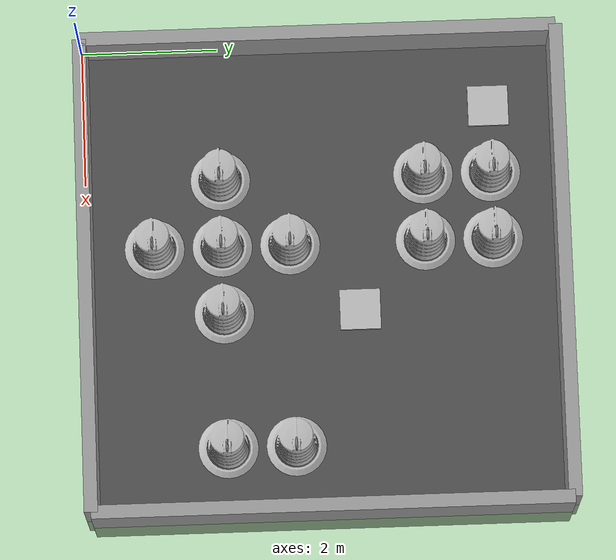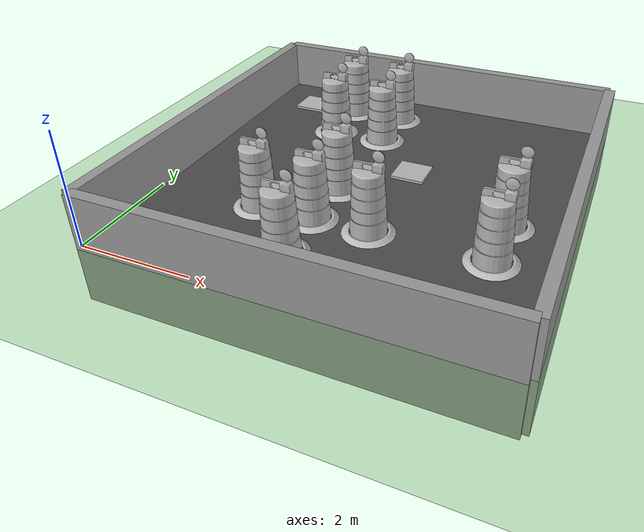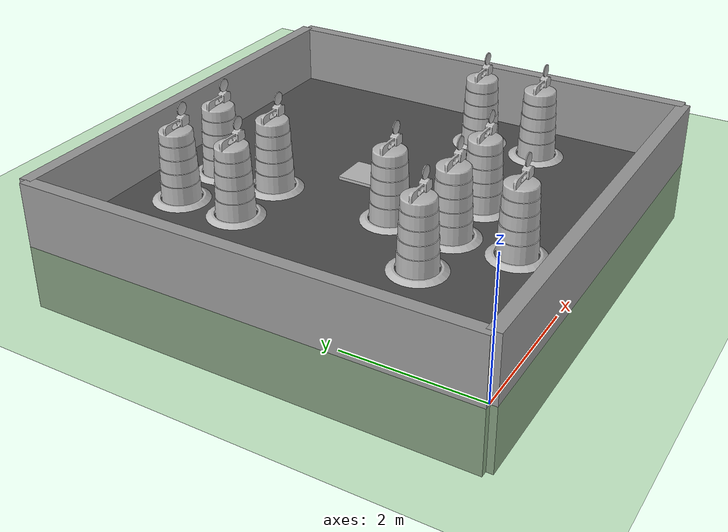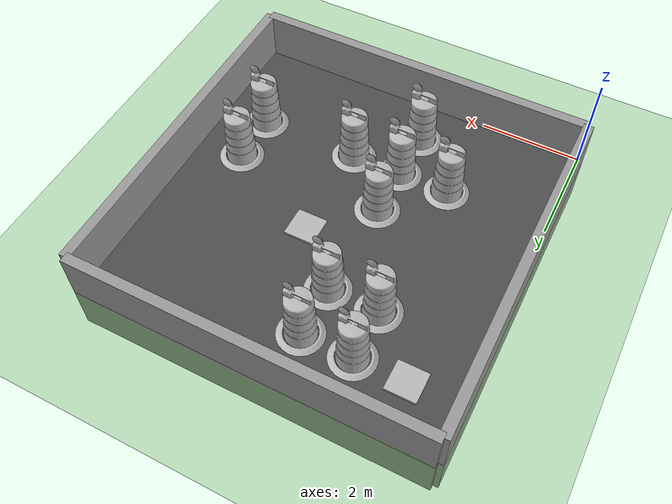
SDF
<sdf version="1.4">
  <world name="default">
    <model name="vrc_driving_terrain">
      <static>1</static>
      <link name="grass_plane">
        <visual name="visual_0">
          <pose frame="">0 0 -0.0 0 -0 0</pose>
          <cast_shadows>0</cast_shadows>
          <geometry>
            <plane>
              <normal>0 0 1</normal>
              <size>150 150</size>
            </plane>
          </geometry>
          <material>
            <script>
              <uri>model://vrc_driving_terrain/materials/scripts</uri>
              <uri>model://vrc_driving_terrain/materials/textures</uri>
              <name>vrc/grass</name>
            </script>
          </material>
        </visual>
        <self_collide>0</self_collide>
        <kinematic>0</kinematic>
      </link>
      <pose frame="">0 0 0.01 0 -0 0</pose>
    </model>
    <include>
      <uri>model://ground_plane</uri>
    </include>
    <include>
      <uri>model://sun</uri>
    </include>

    <plugin filename="librotors_gazebo_ros_interface_plugin.so" name="ros_interface_plugin" />

    <spherical_coordinates>
      <surface_model>EARTH_WGS84</surface_model>
      <latitude_deg>47.3667</latitude_deg>
      <longitude_deg>8.5500</longitude_deg>
      <elevation>500.0</elevation>
      <heading_deg>0</heading_deg>
    </spherical_coordinates>
    <physics type="ode">
      <ode>
        <solver>
          <type>quick</type>
          <iters>1000</iters>
          <sor>1.3</sor>
        </solver>
        <constraints>
          <cfm>0</cfm>
          <erp>0.2</erp>
          <contact_max_correcting_vel>100</contact_max_correcting_vel>
          <contact_surface_layer>0.001</contact_surface_layer>
        </constraints>
      </ode>
      <max_step_size>0.01</max_step_size>
      <real_time_factor>1</real_time_factor>
      <real_time_update_rate>100</real_time_update_rate>
      <gravity>0 0 -9.8</gravity>
    </physics>
    <gui>
      <type>fltk</type>
      <size>480 320</size>
      <pos>0 0</pos>
      <frames>
        <row height="100%">
          <camera width="100%">
            <xyz>8 8 5</xyz>
            <rpy>0 45 180</rpy>
          </camera>
        </row>
      </frames>
    </gui>
  <model name="box_target_green">
      <static>1</static>
      <link name="link">
        <pose frame="">1 6 0 0 0 0</pose>
        <collision name="collision">
          <geometry>
            <box>
              <size>6 6 2</size>
            </box>
          </geometry>
          <max_contacts>10</max_contacts>
          <surface>
            <contact>
              <ode />
            </contact>
            <bounce />
            <friction>
              <torsional>
                <ode />
              </torsional>
              <ode />
            </friction>
          </surface>
        </collision>
        <visual name="visual">
          <geometry>
            <mesh>
              <uri>model://box_target_green/meshes/mesh.dae</uri>
              <scale>0.1 0.1 0.1</scale>
            </mesh>
          </geometry>
        </visual>
        <self_collide>0</self_collide>
        <kinematic>0</kinematic>
      </link>
    </model>
    <model name="box_target_red">
      <static>1</static>
      <link name="link">
        <pose frame="">4 4 0 0 0 0</pose>
        <collision name="collision">
          <geometry>
            <box>
              <size>6 6 2</size>
            </box>
          </geometry>
          <max_contacts>10</max_contacts>
          <surface>
            <contact>
              <ode />
            </contact>
            <bounce />
            <friction>
              <torsional>
                <ode />
              </torsional>
              <ode />
            </friction>
          </surface>
        </collision>
        <visual name="visual">
          <geometry>
            <mesh>
              <uri>model://box_target_red/meshes/mesh.dae</uri>
              <scale>0.1 0.1 0.1</scale>
            </mesh>
          </geometry>
        </visual>
        <self_collide>0</self_collide>
        <kinematic>0</kinematic>
      </link>
    </model>
  <model name="grey_wall">
      <static>1</static>
      <link name="link">
        <visual name="visual">
          <cast_shadows>0</cast_shadows>
          <geometry>
            <box>
              <size>7 0.2 2</size>
            </box>
          </geometry>
          <material>
            <script>
              <uri>model://grey_wall/materials/scripts</uri>
              <uri>model://grey_wall/materials/textures</uri>
              <name>vrc/grey_wall</name>
            </script>
          </material>
        </visual>
      </link>
      <pose frame="">3.5 0 0 0 0 0</pose>
    </model>
    <model name="grey_wall">
      <static>1</static>
      <link name="link">
        <visual name="visual">
          <cast_shadows>0</cast_shadows>
          <geometry>
            <box>
              <size>7 0.2 2</size>
            </box>
          </geometry>
          <material>
            <script>
              <uri>model://grey_wall/materials/scripts</uri>
              <uri>model://grey_wall/materials/textures</uri>
              <name>vrc/grey_wall</name>
            </script>
          </material>
        </visual>
      </link>
      <pose frame="">0 3.5 0 0 0 1.57079632679</pose>
    </model>
    <model name="grey_wall">
      <static>1</static>
      <link name="link">
        <visual name="visual">
          <cast_shadows>0</cast_shadows>
          <geometry>
            <box>
              <size>7 0.2 2</size>
            </box>
          </geometry>
          <material>
            <script>
              <uri>model://grey_wall/materials/scripts</uri>
              <uri>model://grey_wall/materials/textures</uri>
              <name>vrc/grey_wall</name>
            </script>
          </material>
        </visual>
      </link>
      <pose frame="">7 3.5 0 0 0 -1.57079632679</pose>
    </model>
    <model name="grey_wall">
      <static>1</static>
      <link name="link">
        <visual name="visual">
          <cast_shadows>0</cast_shadows>
          <geometry>
            <box>
              <size>7 0.2 2</size>
            </box>
          </geometry>
          <material>
            <script>
              <uri>model://grey_wall/materials/scripts</uri>
              <uri>model://grey_wall/materials/textures</uri>
              <name>vrc/grey_wall</name>
            </script>
          </material>
        </visual>
      </link>
      <pose frame="">3.5 7 0 0 0 3.14159265359</pose>
    </model>
    <model name="asphalt_plane">
      <static>1</static>
      <link name="link">
        <visual name="visual">
          <cast_shadows>0</cast_shadows>
          <geometry>
            <box>
              <size>7 7 0.1</size>
            </box>
          </geometry>
          <material>
            <script>
              <uri>model://asphalt_plane/materials/scripts</uri>
              <uri>model://asphalt_plane/materials/textures</uri>
              <name>vrc/asphalt</name>
            </script>
          </material>
        </visual>
        <self_collide>0</self_collide>
        <kinematic>0</kinematic>
      </link>
      <pose frame="">3.5 3.5 0 0 0 0</pose>
    </model>
    <model name="Construction Barrel">
      <link name="link">
        <collision name="collision">
          <geometry>
            <mesh>
              <uri>model://construction_barrel/meshes/construction_barrel.dae</uri>
              <scale>1 1 1</scale>
            </mesh>
          </geometry>
          <max_contacts>10</max_contacts>
          <surface>
            <contact>
              <ode />
            </contact>
            <bounce />
            <friction>
              <torsional>
                <ode />
              </torsional>
              <ode />
            </friction>
          </surface>
        </collision>
        <visual name="visual">
          <geometry>
            <mesh>
              <uri>model://construction_barrel/meshes/construction_barrel.dae</uri>
            </mesh>
          </geometry>
        </visual>
      </link>
      <pose>2 2 0 0 0 0</pose>
      <static>1</static>
    </model>
    <model name="Construction Barrel">
      <link name="link">
        <collision name="collision">
          <geometry>
            <mesh>
              <uri>model://construction_barrel/meshes/construction_barrel.dae</uri>
              <scale>1 1 1</scale>
            </mesh>
          </geometry>
          <max_contacts>10</max_contacts>
          <surface>
            <contact>
              <ode />
            </contact>
            <bounce />
            <friction>
              <torsional>
                <ode />
              </torsional>
              <ode />
            </friction>
          </surface>
        </collision>
        <visual name="visual">
          <geometry>
            <mesh>
              <uri>model://construction_barrel/meshes/construction_barrel.dae</uri>
            </mesh>
          </geometry>
        </visual>
      </link>
      <pose>2 5 0 0 0 0</pose>
      <static>1</static>
    </model>
    <model name="Construction Barrel">
      <link name="link">
        <collision name="collision">
          <geometry>
            <mesh>
              <uri>model://construction_barrel/meshes/construction_barrel.dae</uri>
              <scale>1 1 1</scale>
            </mesh>
          </geometry>
          <max_contacts>10</max_contacts>
          <surface>
            <contact>
              <ode />
            </contact>
            <bounce />
            <friction>
              <torsional>
                <ode />
              </torsional>
              <ode />
            </friction>
          </surface>
        </collision>
        <visual name="visual">
          <geometry>
            <mesh>
              <uri>model://construction_barrel/meshes/construction_barrel.dae</uri>
            </mesh>
          </geometry>
        </visual>
      </link>
      <pose>2 6 0 0 0 0</pose>
      <static>1</static>
    </model>
    <model name="Construction Barrel">
      <link name="link">
        <collision name="collision">
          <geometry>
            <mesh>
              <uri>model://construction_barrel/meshes/construction_barrel.dae</uri>
              <scale>1 1 1</scale>
            </mesh>
          </geometry>
          <max_contacts>10</max_contacts>
          <surface>
            <contact>
              <ode />
            </contact>
            <bounce />
            <friction>
              <torsional>
                <ode />
              </torsional>
              <ode />
            </friction>
          </surface>
        </collision>
        <visual name="visual">
          <geometry>
            <mesh>
              <uri>model://construction_barrel/meshes/construction_barrel.dae</uri>
            </mesh>
          </geometry>
        </visual>
      </link>
      <pose>3 1 0 0 0 0</pose>
      <static>1</static>
    </model>
    <model name="Construction Barrel">
      <link name="link">
        <collision name="collision">
          <geometry>
            <mesh>
              <uri>model://construction_barrel/meshes/construction_barrel.dae</uri>
              <scale>1 1 1</scale>
            </mesh>
          </geometry>
          <max_contacts>10</max_contacts>
          <surface>
            <contact>
              <ode />
            </contact>
            <bounce />
            <friction>
              <torsional>
                <ode />
              </torsional>
              <ode />
            </friction>
          </surface>
        </collision>
        <visual name="visual">
          <geometry>
            <mesh>
              <uri>model://construction_barrel/meshes/construction_barrel.dae</uri>
            </mesh>
          </geometry>
        </visual>
      </link>
      <pose>3 2 0 0 0 0</pose>
      <static>1</static>
    </model>
    <model name="Construction Barrel">
      <link name="link">
        <collision name="collision">
          <geometry>
            <mesh>
              <uri>model://construction_barrel/meshes/construction_barrel.dae</uri>
              <scale>1 1 1</scale>
            </mesh>
          </geometry>
          <max_contacts>10</max_contacts>
          <surface>
            <contact>
              <ode />
            </contact>
            <bounce />
            <friction>
              <torsional>
                <ode />
              </torsional>
              <ode />
            </friction>
          </surface>
        </collision>
        <visual name="visual">
          <geometry>
            <mesh>
              <uri>model://construction_barrel/meshes/construction_barrel.dae</uri>
            </mesh>
          </geometry>
        </visual>
      </link>
      <pose>3 3 0 0 0 0</pose>
      <static>1</static>
    </model>
    <model name="Construction Barrel">
      <link name="link">
        <collision name="collision">
          <geometry>
            <mesh>
              <uri>model://construction_barrel/meshes/construction_barrel.dae</uri>
              <scale>1 1 1</scale>
            </mesh>
          </geometry>
          <max_contacts>10</max_contacts>
          <surface>
            <contact>
              <ode />
            </contact>
            <bounce />
            <friction>
              <torsional>
                <ode />
              </torsional>
              <ode />
            </friction>
          </surface>
        </collision>
        <visual name="visual">
          <geometry>
            <mesh>
              <uri>model://construction_barrel/meshes/construction_barrel.dae</uri>
            </mesh>
          </geometry>
        </visual>
      </link>
      <pose>3 5 0 0 0 0</pose>
      <static>1</static>
    </model>
    <model name="Construction Barrel">
      <link name="link">
        <collision name="collision">
          <geometry>
            <mesh>
              <uri>model://construction_barrel/meshes/construction_barrel.dae</uri>
              <scale>1 1 1</scale>
            </mesh>
          </geometry>
          <max_contacts>10</max_contacts>
          <surface>
            <contact>
              <ode />
            </contact>
            <bounce />
            <friction>
              <torsional>
                <ode />
              </torsional>
              <ode />
            </friction>
          </surface>
        </collision>
        <visual name="visual">
          <geometry>
            <mesh>
              <uri>model://construction_barrel/meshes/construction_barrel.dae</uri>
            </mesh>
          </geometry>
        </visual>
      </link>
      <pose>3 6 0 0 0 0</pose>
      <static>1</static>
    </model>
    <model name="Construction Barrel">
      <link name="link">
        <collision name="collision">
          <geometry>
            <mesh>
              <uri>model://construction_barrel/meshes/construction_barrel.dae</uri>
              <scale>1 1 1</scale>
            </mesh>
          </geometry>
          <max_contacts>10</max_contacts>
          <surface>
            <contact>
              <ode />
            </contact>
            <bounce />
            <friction>
              <torsional>
                <ode />
              </torsional>
              <ode />
            </friction>
          </surface>
        </collision>
        <visual name="visual">
          <geometry>
            <mesh>
              <uri>model://construction_barrel/meshes/construction_barrel.dae</uri>
            </mesh>
          </geometry>
        </visual>
      </link>
      <pose>4 2 0 0 0 0</pose>
      <static>1</static>
    </model>
    <model name="Construction Barrel">
      <link name="link">
        <collision name="collision">
          <geometry>
            <mesh>
              <uri>model://construction_barrel/meshes/construction_barrel.dae</uri>
              <scale>1 1 1</scale>
            </mesh>
          </geometry>
          <max_contacts>10</max_contacts>
          <surface>
            <contact>
              <ode />
            </contact>
            <bounce />
            <friction>
              <torsional>
                <ode />
              </torsional>
              <ode />
            </friction>
          </surface>
        </collision>
        <visual name="visual">
          <geometry>
            <mesh>
              <uri>model://construction_barrel/meshes/construction_barrel.dae</uri>
            </mesh>
          </geometry>
        </visual>
      </link>
      <pose>6 2 0 0 0 0</pose>
      <static>1</static>
    </model>
    <model name="Construction Barrel">
      <link name="link">
        <collision name="collision">
          <geometry>
            <mesh>
              <uri>model://construction_barrel/meshes/construction_barrel.dae</uri>
              <scale>1 1 1</scale>
            </mesh>
          </geometry>
          <max_contacts>10</max_contacts>
          <surface>
            <contact>
              <ode />
            </contact>
            <bounce />
            <friction>
              <torsional>
                <ode />
              </torsional>
              <ode />
            </friction>
          </surface>
        </collision>
        <visual name="visual">
          <geometry>
            <mesh>
              <uri>model://construction_barrel/meshes/construction_barrel.dae</uri>
            </mesh>
          </geometry>
        </visual>
      </link>
      <pose>6 3 0 0 0 0</pose>
      <static>1</static>
    </model>
    </world>
</sdf>
